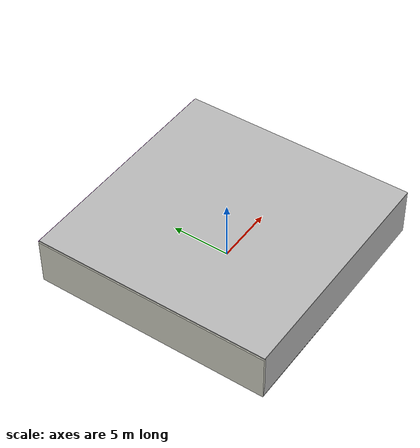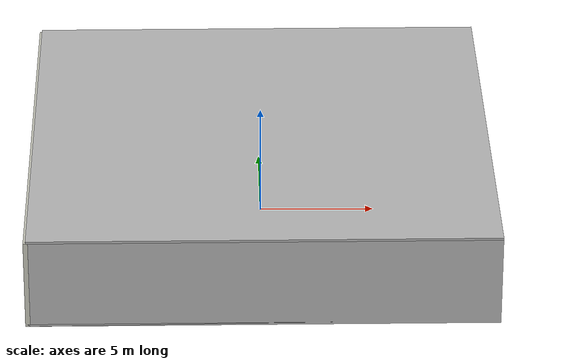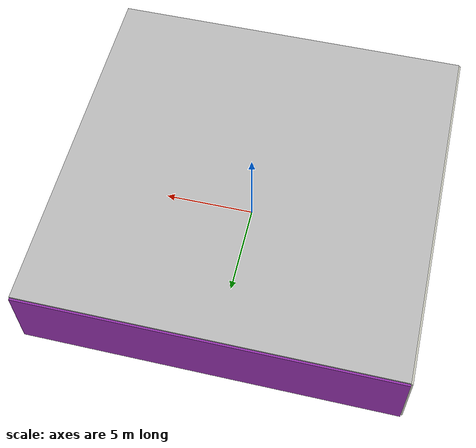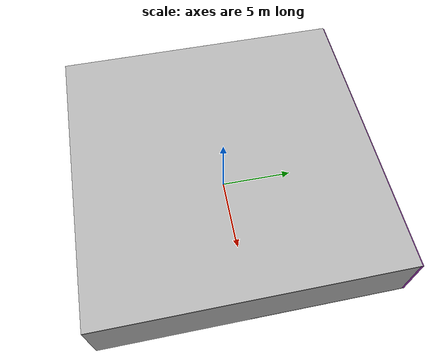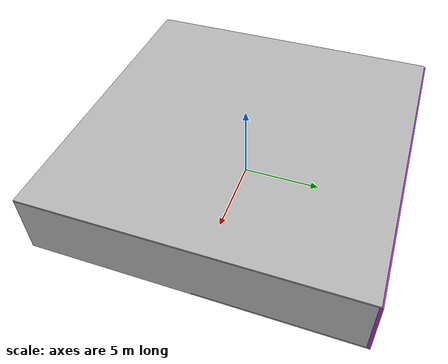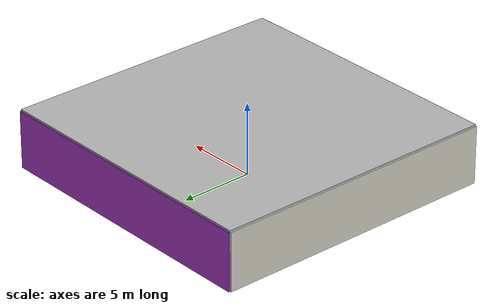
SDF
<sdf version="1.4">
 <world name="default">
  <physics type="ode">
   <max_step_size>0.001</max_step_size>
   <real_time_factor>1</real_time_factor>
   <real_time_update_rate>1000</real_time_update_rate>
   <gravity>0 0 -9.8</gravity>
  </physics>
  <scene><ambient>0.4 0.4 0.4 1</ambient><background>0.7 0.7 0.7 1</background><shadows>1</shadows></scene>
  <model name="Surrounding">
   <static>1</static>
   <link name="Ceiling">
    <collision name="Ceiling_Collision"><geometry><box><size>20 20 0.1</size></box></geometry></collision>
    <visual name="Ceiling_Visual">
     <geometry><box><size>20 20 0.1</size></box></geometry>
     <material>
      <script><uri>file://media/materials/scripts/gazebo.material</uri><name>Gazebo/LightOff</name></script>
     </material>
    </visual>
    <pose>0 0 4.05 0 0 0</pose>
   </link>
   <link name="Wall_South">
    <collision name="Wall_South_Collision">
     <geometry><box><size>20 0 4</size></box></geometry>
     <pose>0 0 2 0 -0 0</pose>
    </collision>
    <visual name="Wall_South_Visual">
     <pose>0 0 2 0 -0 0</pose>
     <geometry><box><size>20 0 4</size></box></geometry>
     <material>
      <script><uri>file://media/materials/scripts/gazebo.material</uri><name>Gazebo/JointAnchor</name></script>
     </material>
    </visual>
    <velocity_decay><linear>0</linear><angular>0</angular></velocity_decay>
    <pose>0 -10 0 0 -0 0</pose>
   </link>
   <link name="Wall_East">
    <collision name="Wall_21_Collision">
     <geometry><box><size>20 0 4</size></box></geometry>
     <pose>0 0 2 0 -0 0</pose>
    </collision>
    <visual name="Wall_21_Visual">
     <pose>0 0 2 0 -0 0</pose>
     <geometry><box><size>20 0 4</size></box></geometry>
     <material>
      <script><uri>file://media/materials/scripts/gazebo.material</uri><name>Gazebo/PioneerBody</name></script>
     </material>
    </visual>
    <velocity_decay><linear>0</linear><angular>0</angular></velocity_decay>
    <pose>10 0 0 0 -0 1.5708</pose>
   </link>
   <link name="Wall_North">
    <collision name="Wall_22_Collision">
     <geometry><box><size>20 0.2 4</size></box></geometry>
     <pose>0 0 2 0 -0 0</pose>
    </collision>
    <visual name="Wall_22_Visual">
     <pose>0 0 2 0 -0 0</pose>
     <geometry><box><size>20 0.2 4</size></box></geometry>
     <material>
      <script><uri>file://media/materials/scripts/gazebo.material</uri><name>Gazebo/PurpleGlow</name></script>
     </material>
    </visual>
    <velocity_decay><linear>0</linear><angular>0</angular></velocity_decay>
    <pose>0 10 0 0 -0 0</pose>
   </link>
   <link name="Wall_West">
    <collision name="Wall_23_Collision">
     <geometry><box><size>20 0.2 4</size></box></geometry>
     <pose>0 0 2 0 -0 0</pose>
    </collision>
    <visual name="Wall_23_Visual">
     <pose>0 0 2 0 -0 0</pose>
     <geometry><box><size>20 0.2 4</size></box></geometry>
     <material>
      <script><uri>file://media/materials/scripts/gazebo.material</uri><name>Gazebo/PaintedWall</name></script>
     </material>
    </visual>
    <velocity_decay><linear>0</linear><angular>0</angular></velocity_decay>
    <pose>-10 0 0 0 0 -1.5708</pose>
   </link>
   <link name="Ground_link">
    <collision name="collision">
     <pose>0 0 .05 0 -0 0</pose>
     <geometry><box><size>20 20 0.1</size></box></geometry>
    </collision>
    <visual name="visual">
     <pose>0 0 .05 0 -0 0</pose>
     <geometry><box><size>20 20 0.1</size></box></geometry>
     <material>
      <script><uri>file://media/materials/scripts/gazebo.material</uri><name>Gazebo/PioneerBody</name></script>
     </material>
    </visual>
   </link>
   <static>1</static>
  </model>
  <spherical_coordinates>
   <surface_model>EARTH_WGS84</surface_model>
   <latitude_deg>0</latitude_deg>
   <longitude_deg>0</longitude_deg>
   <elevation>0</elevation>
   <heading_deg>0</heading_deg>
  </spherical_coordinates>
  <light name="lightball_0" type="diffuse">
   <diffuse>0.8 0.8 0.8 1</diffuse>
   <specular>0.2 0.2 0.2 1</specular>
   <attenuation>
    <range>100</range>
    <constant>0.7</constant>
    <linear>0.01</linear>
    <quadratic>0.001</quadratic>
   </attenuation>
   <direction>-0.5 0.1 -0.9</direction>
   <pose>-8.15956439825 -5.58259134445 3.7163592055 0 0 0</pose>
  </light>
  <light name="lightball_1" type="diffuse">
   <diffuse>0.8 0.8 0.8 1</diffuse>
   <specular>0.2 0.2 0.2 1</specular>
   <attenuation>
    <range>100</range>
    <constant>0.7</constant>
    <linear>0.01</linear>
    <quadratic>0.001</quadratic>
   </attenuation>
   <direction>-0.5 0.1 -0.9</direction>
   <pose>7.49358396746 -4.19634025228 1.28627036225 0 0 0</pose>
  </light>
  <light name="lightball_2" type="diffuse">
   <diffuse>0.8 0.8 0.8 1</diffuse>
   <specular>0.2 0.2 0.2 1</specular>
   <attenuation>
    <range>100</range>
    <constant>0.7</constant>
    <linear>0.01</linear>
    <quadratic>0.001</quadratic>
   </attenuation>
   <direction>-0.5 0.1 -0.9</direction>
   <pose>7.21119015624 5.77841677663 2.78615481818 0 0 0</pose>
  </light>
  <light name="lightball_3" type="diffuse">
   <diffuse>0.8 0.8 0.8 1</diffuse>
   <specular>0.2 0.2 0.2 1</specular>
   <attenuation>
    <range>100</range>
    <constant>0.7</constant>
    <linear>0.01</linear>
    <quadratic>0.001</quadratic>
   </attenuation>
   <direction>-0.5 0.1 -0.9</direction>
   <pose>-1.41811030842 -4.96436824765 0.672381426989 0 0 0</pose>
  </light>
  <light name="lightball_4" type="diffuse">
   <diffuse>0.8 0.8 0.8 1</diffuse>
   <specular>0.2 0.2 0.2 1</specular>
   <attenuation>
    <range>100</range>
    <constant>0.7</constant>
    <linear>0.01</linear>
    <quadratic>0.001</quadratic>
   </attenuation>
   <direction>-0.5 0.1 -0.9</direction>
   <pose>4.89744869283 -4.24385685058 2.50291129668 0 0 0</pose>
  </light>
  <light name="lightball_5" type="diffuse">
   <diffuse>0.8 0.8 0.8 1</diffuse>
   <specular>0.2 0.2 0.2 1</specular>
   <attenuation>
    <range>100</range>
    <constant>0.7</constant>
    <linear>0.01</linear>
    <quadratic>0.001</quadratic>
   </attenuation>
   <direction>-0.5 0.1 -0.9</direction>
   <pose>0.965355566278 -9.73706960123 1.07778738148 0 0 0</pose>
  </light>
  <light name="lightball_6" type="diffuse">
   <diffuse>0.8 0.8 0.8 1</diffuse>
   <specular>0.2 0.2 0.2 1</specular>
   <attenuation>
    <range>100</range>
    <constant>0.7</constant>
    <linear>0.01</linear>
    <quadratic>0.001</quadratic>
   </attenuation>
   <direction>-0.5 0.1 -0.9</direction>
   <pose>0.0925203404741 8.81093869865 3.06042007744 0 0 0</pose>
  </light>
  <light name="lightball_7" type="diffuse">
   <diffuse>0.8 0.8 0.8 1</diffuse>
   <specular>0.2 0.2 0.2 1</specular>
   <attenuation>
    <range>100</range>
    <constant>0.7</constant>
    <linear>0.01</linear>
    <quadratic>0.001</quadratic>
   </attenuation>
   <direction>-0.5 0.1 -0.9</direction>
   <pose>6.00073816919 9.33392262583 2.77738133592 0 0 0</pose>
  </light>
  <light name="lightball_8" type="diffuse">
   <diffuse>0.8 0.8 0.8 1</diffuse>
   <specular>0.2 0.2 0.2 1</specular>
   <attenuation>
    <range>100</range>
    <constant>0.7</constant>
    <linear>0.01</linear>
    <quadratic>0.001</quadratic>
   </attenuation>
   <direction>-0.5 0.1 -0.9</direction>
   <pose>-2.60459030453 1.65603296213 0.803710708685 0 0 0</pose>
  </light>
  <light name="lightball_9" type="diffuse">
   <diffuse>0.8 0.8 0.8 1</diffuse>
   <specular>0.2 0.2 0.2 1</specular>
   <attenuation>
    <range>100</range>
    <constant>0.7</constant>
    <linear>0.01</linear>
    <quadratic>0.001</quadratic>
   </attenuation>
   <direction>-0.5 0.1 -0.9</direction>
   <pose>-1.5721055854 -1.0792644201 0.57714767424 0 0 0</pose>
  </light>
  <light name="lightball_10" type="diffuse">
   <diffuse>0.8 0.8 0.8 1</diffuse>
   <specular>0.2 0.2 0.2 1</specular>
   <attenuation>
    <range>100</range>
    <constant>0.7</constant>
    <linear>0.01</linear>
    <quadratic>0.001</quadratic>
   </attenuation>
   <direction>-0.5 0.1 -0.9</direction>
   <pose>3.8746246649 -8.05721520697 3.6243492052 0 0 0</pose>
  </light>
  <light name="lightball_11" type="diffuse">
   <diffuse>0.8 0.8 0.8 1</diffuse>
   <specular>0.2 0.2 0.2 1</specular>
   <attenuation>
    <range>100</range>
    <constant>0.7</constant>
    <linear>0.01</linear>
    <quadratic>0.001</quadratic>
   </attenuation>
   <direction>-0.5 0.1 -0.9</direction>
   <pose>5.03081004132 -6.86401593691 1.94682988438 0 0 0</pose>
  </light>
  <light name="lightball_12" type="diffuse">
   <diffuse>0.8 0.8 0.8 1</diffuse>
   <specular>0.2 0.2 0.2 1</specular>
   <attenuation>
    <range>100</range>
    <constant>0.7</constant>
    <linear>0.01</linear>
    <quadratic>0.001</quadratic>
   </attenuation>
   <direction>-0.5 0.1 -0.9</direction>
   <pose>-6.89105519206 -6.4552609081 2.27614033942 0 0 0</pose>
  </light>
  <include>
   <uri>model://textured_shapes</uri>
   <pose>-4.4998320272 5.6525447152 0 0 0 2.39840581786</pose>
  </include>
  <include><uri>model://table</uri><pose>-1.40852737472 4.20826269491 0 0 0 1.54300948685</pose></include>
 </world>
</sdf>

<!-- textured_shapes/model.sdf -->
<sdf version="1.6">
  <model name="textured_shapes">
    <pose>0 0 0.5 0 0 0</pose>
    <link name="box">
      <pose>0 -1.5 0 0 0 0</pose>
      <collision name="collision">
        <geometry>
          <box>
            <size>1 1 1</size>
          </box>
        </geometry>
      </collision>
      <visual name="visual">
        <geometry>
          <box>
            <size>1 1 1</size>
          </box>
        </geometry>
        <material>
          <script>
            <uri>model://../model_source/models/textured_shapes/materials/scripts</uri>
            <uri>model://../model_source/models/textured_shapes/materials/textures</uri>
            <name>TexturedShape/Squares</name>
          </script>
        </material>
      </visual>
    </link>
    <link name="sphere">
      <collision name="collision">
        <geometry>
          <sphere>
            <radius>0.5</radius>
          </sphere>
        </geometry>
      </collision>
      <visual name="visual">
        <geometry>
          <sphere>
            <radius>0.5</radius>
          </sphere>
        </geometry>
        <material>
          <script>
            <uri>model://../model_source/models/textured_shapes/materials/scripts</uri>
            <uri>model://../model_source/models/textured_shapes/materials/textures</uri>
            <name>TexturedShape/Squares</name>
          </script>
        </material>
      </visual>
    </link>
    <link name="cylinder">
      <pose>0 1.5 0 0 0 0</pose>
      <collision name="collision">
        <geometry>
          <cylinder>
            <radius>0.5</radius>
            <length>1</length>
          </cylinder>
        </geometry>
      </collision>
      <visual name="visual">
        <geometry>
          <cylinder>
            <radius>0.5</radius>
            <length>1</length>
          </cylinder>
        </geometry>
        <material>
          <script>
            <uri>model://../model_source/models/textured_shapes/materials/scripts</uri>
            <uri>model://../model_source/models/textured_shapes/materials/textures</uri>
            <name>TexturedShape/Squares</name>
          </script>
        </material>
      </visual>
    </link>
  </model>
</sdf>

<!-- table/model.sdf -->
<sdf version="1.5">
  <model name="table">
    <static>true</static>
    <link name="link">
      <collision name="surface">
        <pose>0 0 1.0 0 0 0</pose>
        <geometry>
          <box>
            <size>1.5 0.8 0.03</size>
          </box>
        </geometry>
        <surface>
          <friction>
            <ode>
              <mu>0.6</mu>
              <mu2>0.6</mu2>
            </ode>
          </friction>
        </surface>
      </collision>
      <visual name="visual1">
        <pose>0 0 1.0 0 0 0</pose>
        <geometry>
          <box>
            <size>1.5 0.8 0.03</size>
          </box>
        </geometry>
        <material>
          <script>
            <uri>model://media/materials/scripts/gazebo.material</uri>
            <name>Gazebo/Wood</name>
          </script>
        </material>
      </visual>
      <collision name="front_left_leg">
        <pose>0.68 0.38 0.5 0 0 0</pose>
        <geometry>
          <cylinder>
            <radius>0.02</radius>
            <length>1.0</length>
          </cylinder>
        </geometry>
      </collision>
      <visual name="front_left_leg">
        <pose>0.68 0.38 0.5 0 0 0</pose>
        <geometry>
          <cylinder>
            <radius>0.02</radius>
            <length>1.0</length>
          </cylinder>
        </geometry>
        <material>
          <script>
            <uri>model://media/materials/scripts/gazebo.material</uri>
            <name>Gazebo/Grey</name>
          </script>
        </material>
      </visual>
      <collision name="front_right_leg">
        <pose>0.68 -0.38 0.5 0 0 0</pose>
        <geometry>
          <cylinder>
            <radius>0.02</radius>
            <length>1.0</length>
          </cylinder>
        </geometry>
      </collision>
      <visual name="front_right_leg">
        <pose>0.68 -0.38 0.5 0 0 0</pose>
        <geometry>
          <cylinder>
            <radius>0.02</radius>
            <length>1.0</length>
          </cylinder>
        </geometry>
        <material>
          <script>
            <uri>model://media/materials/scripts/gazebo.material</uri>
            <name>Gazebo/Grey</name>
          </script>
        </material>
      </visual>
      <collision name="back_right_leg">
        <pose>-0.68 -0.38 0.5 0 0 0</pose>
        <geometry>
          <cylinder>
            <radius>0.02</radius>
            <length>1.0</length>
          </cylinder>
        </geometry>
      </collision>
      <visual name="back_right_leg">
        <pose>-0.68 -0.38 0.5 0 0 0</pose>
        <geometry>
          <cylinder>
            <radius>0.02</radius>
            <length>1.0</length>
          </cylinder>
        </geometry>
        <material>
          <script>
            <uri>model://media/materials/scripts/gazebo.material</uri>
            <name>Gazebo/Grey</name>
          </script>
        </material>
      </visual>
      <collision name="back_left_leg">
        <pose>-0.68 0.38 0.5 0 0 0</pose>
        <geometry>
          <cylinder>
            <radius>0.02</radius>
            <length>1.0</length>
          </cylinder>
        </geometry>
      </collision>
      <visual name="back_left_leg">
        <pose>-0.68 0.38 0.5 0 0 0</pose>
        <geometry>
          <cylinder>
            <radius>0.02</radius>
            <length>1.0</length>
          </cylinder>
        </geometry>
        <material>
          <script>
            <uri>model://media/materials/scripts/gazebo.material</uri>
            <name>Gazebo/Grey</name>
          </script>
        </material>
      </visual>
    </link>
  </model>
</sdf>
